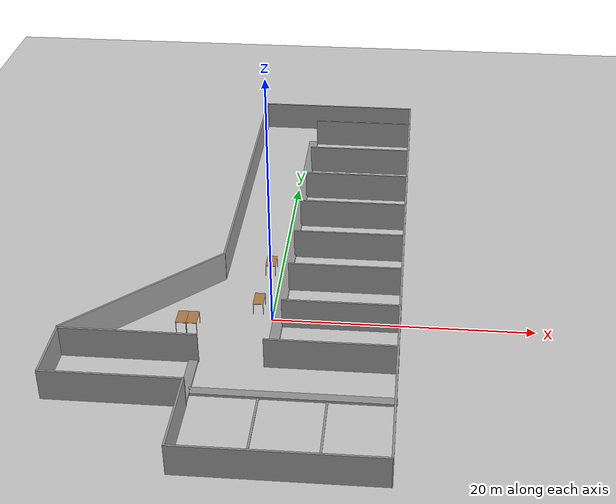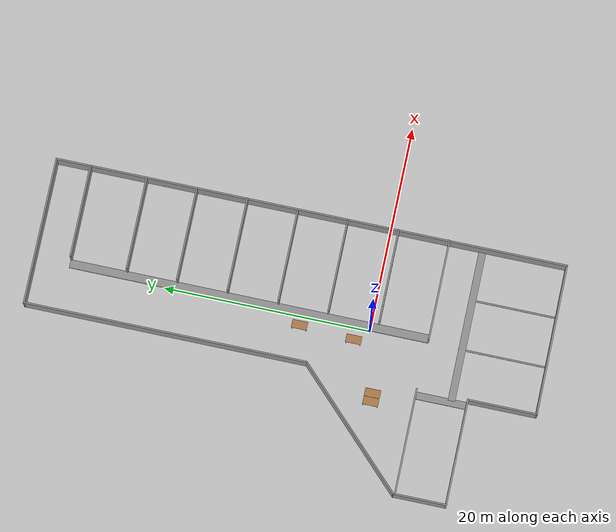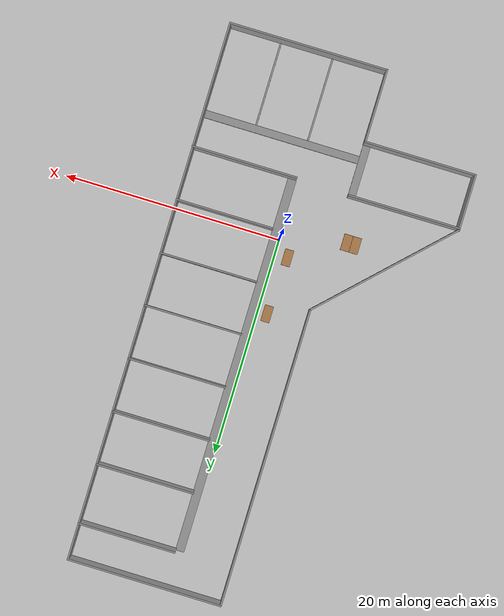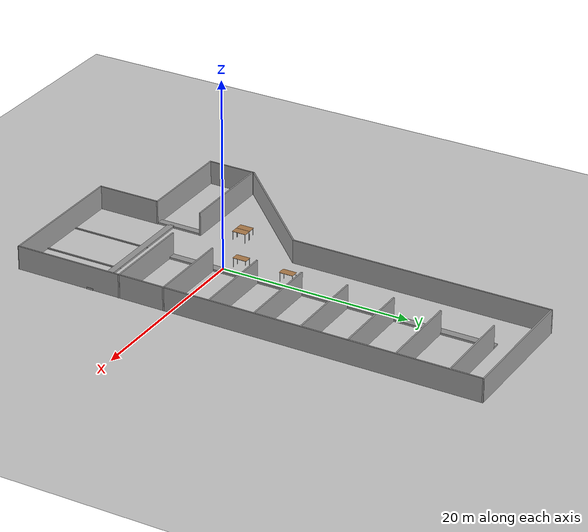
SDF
<sdf version="1.6">
 <world name="default">
  <model name="test__">
   <pose>-2.61572 7.75657 0 0 -0 0</pose>
   <link name="Wall_1">
    <collision name="Wall_1_Collision">
     <geometry><box><size>15 0.15 2.5</size></box></geometry>
     <pose>0 0 1.25 0 -0 0</pose>
    </collision>
    <visual name="Wall_1_Visual">
     <pose>0 0 1.25 0 -0 0</pose>
     <geometry><box><size>15 0.15 2.5</size></box></geometry>
     <material>
      <script><uri>file://media/materials/scripts/gazebo.material</uri><name>Gazebo/Grey</name></script>
      <ambient>1 1 1 1</ambient>
     </material>
     <meta><layer>0</layer></meta>
    </visual>
    <pose>-7.10691 -7.85176 0 0 -0 -2.35619</pose>
   </link>
   <link name="Wall_11">
    <collision name="Wall_11_Collision">
     <geometry><box><size>14.3012 0.15 2.5</size></box></geometry>
     <pose>0 0 1.25 0 -0 0</pose>
    </collision>
    <visual name="Wall_11_Visual">
     <pose>0 0 1.25 0 -0 0</pose>
     <geometry><box><size>14.3012 0.15 2.5</size></box></geometry>
     <material>
      <script><uri>file://media/materials/scripts/gazebo.material</uri><name>Gazebo/Grey</name></script>
      <ambient>1 1 1 1</ambient>
     </material>
     <meta><layer>0</layer></meta>
    </visual>
    <pose>5.26724 24.8122 0 0 -0 3.13958</pose>
   </link>
   <link name="Wall_12">
    <collision name="Wall_12_Collision">
     <geometry><box><size>27.5 0.15 2.5</size></box></geometry>
     <pose>0 0 1.25 0 -0 0</pose>
    </collision>
    <visual name="Wall_12_Visual">
     <pose>0 0 1.25 0 -0 0</pose>
     <geometry><box><size>27.5 0.15 2.5</size></box></geometry>
     <material>
      <script><uri>file://media/materials/scripts/gazebo.material</uri><name>Gazebo/Grey</name></script>
      <ambient>1 1 1 1</ambient>
     </material>
     <meta><layer>0</layer></meta>
    </visual>
    <pose>-1.80834 11.1571 0 0 -0 -1.5708</pose>
   </link>
   <link name="Wall_21">
    <collision name="Wall_21_Collision">
     <geometry><box><size>10.2504 0.15 2.5</size></box></geometry>
     <pose>0 0 1.25 0 -0 0</pose>
    </collision>
    <visual name="Wall_21_Visual">
     <pose>0 0 1.25 0 -0 0</pose>
     <geometry><box><size>10.2504 0.15 2.5</size></box></geometry>
     <material>
      <script><uri>file://media/materials/scripts/gazebo.material</uri><name>Gazebo/Grey</name></script>
      <ambient>1 1 1 1</ambient>
     </material>
     <meta><layer>0</layer></meta>
    </visual>
    <pose>-7.21776 -13.2674 0 0 -0 -3.14011</pose>
   </link>
   <link name="Wall_25">
    <collision name="Wall_25_Collision">
     <geometry><box><size>8.5 0.15 0.1</size></box></geometry>
     <pose>0 0 0.05 0 -0 0</pose>
    </collision>
    <visual name="Wall_25_Visual">
     <pose>0 0 0.05 0 -0 0</pose>
     <geometry><box><size>8.5 0.15 0.1</size></box></geometry>
     <material>
      <script><uri>file://media/materials/scripts/gazebo.material</uri><name>Gazebo/Grey</name></script>
      <ambient>1 1 1 1</ambient>
     </material>
     <meta><layer>0</layer></meta>
    </visual>
    <pose>2.73219 -20.5989 0 0 -0 -1.5708</pose>
   </link>
   <link name="Wall_27">
    <collision name="Wall_27_Collision">
     <geometry><box><size>8.5 0.15 0.1</size></box></geometry>
     <pose>0 0 0.05 0 -0 0</pose>
    </collision>
    <visual name="Wall_27_Visual">
     <pose>0 0 0.05 0 -0 0</pose>
     <geometry><box><size>8.5 0.15 0.1</size></box></geometry>
     <material>
      <script><uri>file://media/materials/scripts/gazebo.material</uri><name>Gazebo/Grey</name></script>
      <ambient>1 1 1 1</ambient>
     </material>
     <meta><layer>0</layer></meta>
    </visual>
    <pose>7.59109 -20.6044 0 0 -0 -1.5708</pose>
   </link>
   <link name="Wall_29">
    <collision name="Wall_29_Collision">
     <geometry><box><size>9.75 0.15 2.5</size></box></geometry>
     <pose>0 0 1.25 0 -0 0</pose>
    </collision>
    <visual name="Wall_29_Visual">
     <pose>0 0 1.25 0 -0 0</pose>
     <geometry><box><size>9.75 0.15 2.5</size></box></geometry>
     <material>
      <script><uri>file://media/materials/scripts/gazebo.material</uri><name>Gazebo/Grey</name></script>
      <ambient>1 1 1 1</ambient>
     </material>
     <meta><layer>0</layer></meta>
    </visual>
    <pose>7.56587 -13.406 0 0 -0 3.14159</pose>
   </link>
   <link name="Wall_3">
    <collision name="Wall_3_Collision">
     <geometry><box><size>5.25 0.15 2.5</size></box></geometry>
     <pose>0 0 1.25 0 -0 0</pose>
    </collision>
    <visual name="Wall_3_Visual">
     <pose>0 0 1.25 0 -0 0</pose>
     <geometry><box><size>5.25 0.15 2.5</size></box></geometry>
     <material>
      <script><uri>file://media/materials/scripts/gazebo.material</uri><name>Gazebo/Grey</name></script>
      <ambient>1 1 1 1</ambient>
     </material>
     <meta><layer>0</layer></meta>
    </visual>
    <pose>-12.3572 -15.652 0 0 -0 -1.5708</pose>
   </link>
   <link name="Wall_31">
    <collision name="Wall_31_Collision">
     <geometry><box><size>34.9 0.8 0.2</size></box></geometry>
     <pose>0 0 0.1 0 -0 0</pose>
    </collision>
    <visual name="Wall_31_Visual">
     <pose>0 0 0.1 0 -0 0</pose>
     <geometry><box><size>34.9 0.8 0.2</size></box></geometry>
     <material>
      <script><uri>file://media/materials/scripts/gazebo.material</uri><name>Gazebo/Grey</name></script>
      <ambient>1 1 1 1</ambient>
     </material>
     <meta><layer>0</layer></meta>
    </visual>
    <pose>3.07724 4.10911 0 0 -0 1.5708</pose>
   </link>
   <link name="Wall_33">
    <collision name="Wall_33_Collision">
     <geometry><box><size>9 0.15 2.5</size></box></geometry>
     <pose>0 0 1.25 0 -0 0</pose>
    </collision>
    <visual name="Wall_33_Visual">
     <pose>0 0 1.25 0 -0 0</pose>
     <geometry><box><size>9 0.15 2.5</size></box></geometry>
     <material>
      <script><uri>file://media/materials/scripts/gazebo.material</uri><name>Gazebo/Grey</name></script>
      <ambient>1 1 1 1</ambient>
     </material>
     <meta><layer>0</layer></meta>
    </visual>
    <pose>7.93132 -8.48567 0 0 -0 0</pose>
   </link>
   <link name="Wall_35">
    <collision name="Wall_35_Collision">
     <geometry><box><size>9 0.15 2.5</size></box></geometry>
     <pose>0 0 1.25 0 -0 0</pose>
    </collision>
    <visual name="Wall_35_Visual">
     <pose>0 0 1.25 0 -0 0</pose>
     <geometry><box><size>9 0.15 2.5</size></box></geometry>
     <material>
      <script><uri>file://media/materials/scripts/gazebo.material</uri><name>Gazebo/Grey</name></script>
      <ambient>1 1 1 1</ambient>
     </material>
     <meta><layer>0</layer></meta>
    </visual>
    <pose>7.91645 -3.54945 0 0 -0 0</pose>
   </link>
   <link name="Wall_37">
    <collision name="Wall_37_Collision">
     <geometry><box><size>9 0.15 2.5</size></box></geometry>
     <pose>0 0 1.25 0 -0 0</pose>
    </collision>
    <visual name="Wall_37_Visual">
     <pose>0 0 1.25 0 -0 0</pose>
     <geometry><box><size>9 0.15 2.5</size></box></geometry>
     <material>
      <script><uri>file://media/materials/scripts/gazebo.material</uri><name>Gazebo/Grey</name></script>
      <ambient>1 1 1 1</ambient>
     </material>
     <meta><layer>0</layer></meta>
    </visual>
    <pose>7.85698 1.29757 0 0 -0 0</pose>
   </link>
   <link name="Wall_39">
    <collision name="Wall_39_Collision">
     <geometry><box><size>9 0.15 2.5</size></box></geometry>
     <pose>0 0 1.25 0 -0 0</pose>
    </collision>
    <visual name="Wall_39_Visual">
     <pose>0 0 1.25 0 -0 0</pose>
     <geometry><box><size>9 0.15 2.5</size></box></geometry>
     <material>
      <script><uri>file://media/materials/scripts/gazebo.material</uri><name>Gazebo/Grey</name></script>
      <ambient>1 1 1 1</ambient>
     </material>
     <meta><layer>0</layer></meta>
    </visual>
    <pose>7.88083 6.21966 0 0 -0 0</pose>
   </link>
   <link name="Wall_4">
    <collision name="Wall_4_Collision">
     <geometry><box><size>10.3399 0.15 2.5</size></box></geometry>
     <pose>0 0 1.25 0 -0 0</pose>
    </collision>
    <visual name="Wall_4_Visual">
     <pose>0 0 1.25 0 -0 0</pose>
     <geometry><box><size>10.3399 0.15 2.5</size></box></geometry>
     <material>
      <script><uri>file://media/materials/scripts/gazebo.material</uri><name>Gazebo/Grey</name></script>
      <ambient>1 1 1 1</ambient>
     </material>
     <meta><layer>0</layer></meta>
    </visual>
    <pose>-7.26247 -18.202 0 0 -0 1.4e-05</pose>
   </link>
   <link name="Wall_41">
    <collision name="Wall_41_Collision">
     <geometry><box><size>9 0.15 2.5</size></box></geometry>
     <pose>0 0 1.25 0 -0 0</pose>
    </collision>
    <visual name="Wall_41_Visual">
     <pose>0 0 1.25 0 -0 0</pose>
     <geometry><box><size>9 0.15 2.5</size></box></geometry>
     <material>
      <script><uri>file://media/materials/scripts/gazebo.material</uri><name>Gazebo/Grey</name></script>
      <ambient>1 1 1 1</ambient>
     </material>
     <meta><layer>0</layer></meta>
    </visual>
    <pose>7.88083 11.1256 0 0 -0 0</pose>
   </link>
   <link name="Wall_43">
    <collision name="Wall_43_Collision">
     <geometry><box><size>9 0.15 2.5</size></box></geometry>
     <pose>0 0 1.25 0 -0 0</pose>
    </collision>
    <visual name="Wall_43_Visual">
     <pose>0 0 1.25 0 -0 0</pose>
     <geometry><box><size>9 0.15 2.5</size></box></geometry>
     <material>
      <script><uri>file://media/materials/scripts/gazebo.material</uri><name>Gazebo/Grey</name></script>
      <ambient>1 1 1 1</ambient>
     </material>
     <meta><layer>0</layer></meta>
    </visual>
    <pose>7.88083 16.0119 0 0 -0 0</pose>
   </link>
   <link name="Wall_45">
    <collision name="Wall_45_Collision">
     <geometry><box><size>9 0.15 2.5</size></box></geometry>
     <pose>0 0 1.25 0 -0 0</pose>
    </collision>
    <visual name="Wall_45_Visual">
     <pose>0 0 1.25 0 -0 0</pose>
     <geometry><box><size>9 0.15 2.5</size></box></geometry>
     <material>
      <script><uri>file://media/materials/scripts/gazebo.material</uri><name>Gazebo/Grey</name></script>
      <ambient>1 1 1 1</ambient>
     </material>
     <meta><layer>0</layer></meta>
    </visual>
    <pose>7.91033 21.4782 0 0 -0 0</pose>
   </link>
   <link name="Wall_49">
    <collision name="Wall_49_Collision">
     <geometry><box><size>5 0.7 0.2</size></box></geometry>
     <pose>0 0 0.1 0 -0 0</pose>
    </collision>
    <visual name="Wall_49_Visual">
     <pose>0 0 0.1 0 -0 0</pose>
     <geometry><box><size>5 0.7 0.2</size></box></geometry>
     <material>
      <script><uri>file://media/materials/scripts/gazebo.material</uri><name>Gazebo/Grey</name></script>
      <ambient>1 1 1 1</ambient>
     </material>
     <meta><layer>0</layer></meta>
    </visual>
    <pose>-2.47472 -15.7158 0 0 -0 1.5708</pose>
   </link>
   <link name="Wall_51">
    <collision name="Wall_51_Collision">
     <geometry><box><size>14.75 0.7 0.2</size></box></geometry>
     <pose>0 0 0.1 0 -0 0</pose>
    </collision>
    <visual name="Wall_51_Visual">
     <pose>0 0 0.1 0 -0 0</pose>
     <geometry><box><size>14.75 0.7 0.2</size></box></geometry>
     <material>
      <script><uri>file://media/materials/scripts/gazebo.material</uri><name>Gazebo/Grey</name></script>
      <ambient>1 1 1 1</ambient>
     </material>
     <meta><layer>0</layer></meta>
    </visual>
    <pose>5.08824 -16.7089 0 0 -0 0</pose>
   </link>
   <link name="Wall_7">
    <collision name="Wall_7_Collision">
     <geometry><box><size>6.75 0.15 2.5</size></box></geometry>
     <pose>0 0 1.25 0 -0 0</pose>
    </collision>
    <visual name="Wall_7_Visual">
     <pose>0 0 1.25 0 -0 0</pose>
     <geometry><box><size>6.75 0.15 2.5</size></box></geometry>
     <material>
      <script><uri>file://media/materials/scripts/gazebo.material</uri><name>Gazebo/Grey</name></script>
      <ambient>1 1 1 1</ambient>
     </material>
     <meta><layer>0</layer></meta>
    </visual>
    <pose>-2.16761 -21.502 0 0 -0 -1.57075</pose>
   </link>
   <link name="Wall_8">
    <collision name="Wall_8_Collision">
     <geometry><box><size>14.6604 0.15 2.5</size></box></geometry>
     <pose>0 0 1.25 0 -0 0</pose>
    </collision>
    <visual name="Wall_8_Visual">
     <pose>0 0 1.25 0 -0 0</pose>
     <geometry><box><size>14.6604 0.15 2.5</size></box></geometry>
     <material>
      <script><uri>file://media/materials/scripts/gazebo.material</uri><name>Gazebo/Grey</name></script>
      <ambient>1 1 1 1</ambient>
     </material>
     <meta><layer>0</layer></meta>
    </visual>
    <pose>5.08768 -24.817 0 0 -0 0.002061</pose>
   </link>
   <link name="Wall_9">
    <collision name="Wall_9_Collision">
     <geometry><box><size>49.75 0.15 2.5</size></box></geometry>
     <pose>0 0 1.25 0 -0 0</pose>
    </collision>
    <visual name="Wall_9_Visual">
     <pose>0 0 1.25 0 -0 0</pose>
     <geometry><box><size>49.75 0.15 2.5</size></box></geometry>
     <material>
      <script><uri>file://media/materials/scripts/gazebo.material</uri><name>Gazebo/Grey</name></script>
      <ambient>1 1 1 1</ambient>
     </material>
     <meta><layer>0</layer></meta>
    </visual>
    <pose>12.3428 -0.002026 0 0 -0 1.5708</pose>
   </link>
   <static>1</static>
  </model>
  <model name="ground_plane">
   <static>1</static>
   <link name="link">
    <collision name="collision">
     <geometry><plane><normal>0 0 1</normal><size>100 100</size></plane></geometry>
     <surface>
      <contact><collide_bitmask>65535</collide_bitmask></contact>
      <friction><ode><mu>100</mu><mu2>50</mu2></ode></friction>
     </surface>
    </collision>
    <visual name="visual">
     <cast_shadows>0</cast_shadows>
     <geometry><plane><normal>0 0 1</normal><size>100 100</size></plane></geometry>
     <material>
      <script><uri>file://media/materials/scripts/gazebo.material</uri><name>Gazebo/Grey</name></script>
     </material>
    </visual>
   </link>
   <pose>-3.51447 11.9136 0 0 -0 0</pose>
  </model>
  <model name="table_clone">
   <static>1</static>
   <link name="link">
    <collision name="surface">
     <pose>0 0 1 0 -0 0</pose>
     <geometry><box><size>1.5 0.8 0.03</size></box></geometry>
     <surface><friction><ode><mu>0.6</mu><mu2>0.6</mu2></ode></friction></surface>
    </collision>
    <visual name="visual1">
     <pose>0 0 1 0 -0 0</pose>
     <geometry><box><size>1.5 0.8 0.03</size></box></geometry>
     <material>
      <script><uri>file://media/materials/scripts/gazebo.material</uri><name>Gazebo/Wood</name></script>
     </material>
    </visual>
    <collision name="front_left_leg">
     <pose>0.68 0.38 0.5 0 -0 0</pose>
     <geometry><cylinder><radius>0.02</radius><length>1</length></cylinder></geometry>
    </collision>
    <visual name="front_left_leg">
     <pose>0.68 0.38 0.5 0 -0 0</pose>
     <geometry><cylinder><radius>0.02</radius><length>1</length></cylinder></geometry>
     <material>
      <script><uri>file://media/materials/scripts/gazebo.material</uri><name>Gazebo/Grey</name></script>
     </material>
    </visual>
    <collision name="front_right_leg">
     <pose>0.68 -0.38 0.5 0 -0 0</pose>
     <geometry><cylinder><radius>0.02</radius><length>1</length></cylinder></geometry>
    </collision>
    <visual name="front_right_leg">
     <pose>0.68 -0.38 0.5 0 -0 0</pose>
     <geometry><cylinder><radius>0.02</radius><length>1</length></cylinder></geometry>
     <material>
      <script><uri>file://media/materials/scripts/gazebo.material</uri><name>Gazebo/Grey</name></script>
     </material>
    </visual>
    <collision name="back_right_leg">
     <pose>-0.68 -0.38 0.5 0 -0 0</pose>
     <geometry><cylinder><radius>0.02</radius><length>1</length></cylinder></geometry>
    </collision>
    <visual name="back_right_leg">
     <pose>-0.68 -0.38 0.5 0 -0 0</pose>
     <geometry><cylinder><radius>0.02</radius><length>1</length></cylinder></geometry>
     <material>
      <script><uri>file://media/materials/scripts/gazebo.material</uri><name>Gazebo/Grey</name></script>
     </material>
    </visual>
    <collision name="back_left_leg">
     <pose>-0.68 0.38 0.5 0 -0 0</pose>
     <geometry><cylinder><radius>0.02</radius><length>1</length></cylinder></geometry>
    </collision>
    <visual name="back_left_leg">
     <pose>-0.68 0.38 0.5 0 -0 0</pose>
     <geometry><cylinder><radius>0.02</radius><length>1</length></cylinder></geometry>
     <material>
      <script><uri>file://media/materials/scripts/gazebo.material</uri><name>Gazebo/Grey</name></script>
     </material>
    </visual>
   </link>
   <pose>-1.16496 1.3236 0 0 0 -1.56764</pose>
  </model>
  <model name="table_clone_clone_0">
   <static>1</static>
   <link name="link">
    <collision name="surface">
     <pose>0 0 1 0 -0 0</pose>
     <geometry><box><size>1.5 0.8 0.03</size></box></geometry>
     <surface><friction><ode><mu>0.6</mu><mu2>0.6</mu2></ode></friction></surface>
    </collision>
    <visual name="visual1">
     <pose>0 0 1 0 -0 0</pose>
     <geometry><box><size>1.5 0.8 0.03</size></box></geometry>
     <material>
      <script><uri>file://media/materials/scripts/gazebo.material</uri><name>Gazebo/Wood</name></script>
     </material>
    </visual>
    <collision name="front_left_leg">
     <pose>0.68 0.38 0.5 0 -0 0</pose>
     <geometry><cylinder><radius>0.02</radius><length>1</length></cylinder></geometry>
    </collision>
    <visual name="front_left_leg">
     <pose>0.68 0.38 0.5 0 -0 0</pose>
     <geometry><cylinder><radius>0.02</radius><length>1</length></cylinder></geometry>
     <material>
      <script><uri>file://media/materials/scripts/gazebo.material</uri><name>Gazebo/Grey</name></script>
     </material>
    </visual>
    <collision name="front_right_leg">
     <pose>0.68 -0.38 0.5 0 -0 0</pose>
     <geometry><cylinder><radius>0.02</radius><length>1</length></cylinder></geometry>
    </collision>
    <visual name="front_right_leg">
     <pose>0.68 -0.38 0.5 0 -0 0</pose>
     <geometry><cylinder><radius>0.02</radius><length>1</length></cylinder></geometry>
     <material>
      <script><uri>file://media/materials/scripts/gazebo.material</uri><name>Gazebo/Grey</name></script>
     </material>
    </visual>
    <collision name="back_right_leg">
     <pose>-0.68 -0.38 0.5 0 -0 0</pose>
     <geometry><cylinder><radius>0.02</radius><length>1</length></cylinder></geometry>
    </collision>
    <visual name="back_right_leg">
     <pose>-0.68 -0.38 0.5 0 -0 0</pose>
     <geometry><cylinder><radius>0.02</radius><length>1</length></cylinder></geometry>
     <material>
      <script><uri>file://media/materials/scripts/gazebo.material</uri><name>Gazebo/Grey</name></script>
     </material>
    </visual>
    <collision name="back_left_leg">
     <pose>-0.68 0.38 0.5 0 -0 0</pose>
     <geometry><cylinder><radius>0.02</radius><length>1</length></cylinder></geometry>
    </collision>
    <visual name="back_left_leg">
     <pose>-0.68 0.38 0.5 0 -0 0</pose>
     <geometry><cylinder><radius>0.02</radius><length>1</length></cylinder></geometry>
     <material>
      <script><uri>file://media/materials/scripts/gazebo.material</uri><name>Gazebo/Grey</name></script>
     </material>
    </visual>
   </link>
   <pose>-0.876309 6.63945 0 0 0 -1.56764</pose>
  </model>
  <model name="table_clone_clone_clone">
   <static>1</static>
   <link name="link">
    <collision name="surface">
     <pose>0 0 1 0 -0 0</pose>
     <geometry><box><size>1.5 0.8 0.03</size></box></geometry>
     <surface><friction><ode><mu>0.6</mu><mu2>0.6</mu2></ode></friction></surface>
    </collision>
    <visual name="visual1">
     <pose>0 0 1 0 -0 0</pose>
     <geometry><box><size>1.5 0.8 0.03</size></box></geometry>
     <material>
      <script><uri>file://media/materials/scripts/gazebo.material</uri><name>Gazebo/Wood</name></script>
     </material>
    </visual>
    <collision name="front_left_leg">
     <pose>0.68 0.38 0.5 0 -0 0</pose>
     <geometry><cylinder><radius>0.02</radius><length>1</length></cylinder></geometry>
    </collision>
    <visual name="front_left_leg">
     <pose>0.68 0.38 0.5 0 -0 0</pose>
     <geometry><cylinder><radius>0.02</radius><length>1</length></cylinder></geometry>
     <material>
      <script><uri>file://media/materials/scripts/gazebo.material</uri><name>Gazebo/Grey</name></script>
     </material>
    </visual>
    <collision name="front_right_leg">
     <pose>0.68 -0.38 0.5 0 -0 0</pose>
     <geometry><cylinder><radius>0.02</radius><length>1</length></cylinder></geometry>
    </collision>
    <visual name="front_right_leg">
     <pose>0.68 -0.38 0.5 0 -0 0</pose>
     <geometry><cylinder><radius>0.02</radius><length>1</length></cylinder></geometry>
     <material>
      <script><uri>file://media/materials/scripts/gazebo.material</uri><name>Gazebo/Grey</name></script>
     </material>
    </visual>
    <collision name="back_right_leg">
     <pose>-0.68 -0.38 0.5 0 -0 0</pose>
     <geometry><cylinder><radius>0.02</radius><length>1</length></cylinder></geometry>
    </collision>
    <visual name="back_right_leg">
     <pose>-0.68 -0.38 0.5 0 -0 0</pose>
     <geometry><cylinder><radius>0.02</radius><length>1</length></cylinder></geometry>
     <material>
      <script><uri>file://media/materials/scripts/gazebo.material</uri><name>Gazebo/Grey</name></script>
     </material>
    </visual>
    <collision name="back_left_leg">
     <pose>-0.68 0.38 0.5 0 -0 0</pose>
     <geometry><cylinder><radius>0.02</radius><length>1</length></cylinder></geometry>
    </collision>
    <visual name="back_left_leg">
     <pose>-0.68 0.38 0.5 0 -0 0</pose>
     <geometry><cylinder><radius>0.02</radius><length>1</length></cylinder></geometry>
     <material>
      <script><uri>file://media/materials/scripts/gazebo.material</uri><name>Gazebo/Grey</name></script>
     </material>
    </visual>
   </link>
   <pose>-5.84377 -1.48479 0 0 0 -1.56764</pose>
  </model>
  <model name="table_clone_clone_clone_0">
   <static>1</static>
   <link name="link">
    <collision name="surface">
     <pose>0 0 1 0 -0 0</pose>
     <geometry><box><size>1.5 0.8 0.03</size></box></geometry>
     <surface><friction><ode><mu>0.6</mu><mu2>0.6</mu2></ode></friction></surface>
    </collision>
    <visual name="visual1">
     <pose>0 0 1 0 -0 0</pose>
     <geometry><box><size>1.5 0.8 0.03</size></box></geometry>
     <material>
      <script><uri>file://media/materials/scripts/gazebo.material</uri><name>Gazebo/Wood</name></script>
     </material>
    </visual>
    <collision name="front_left_leg">
     <pose>0.68 0.38 0.5 0 -0 0</pose>
     <geometry><cylinder><radius>0.02</radius><length>1</length></cylinder></geometry>
    </collision>
    <visual name="front_left_leg">
     <pose>0.68 0.38 0.5 0 -0 0</pose>
     <geometry><cylinder><radius>0.02</radius><length>1</length></cylinder></geometry>
     <material>
      <script><uri>file://media/materials/scripts/gazebo.material</uri><name>Gazebo/Grey</name></script>
     </material>
    </visual>
    <collision name="front_right_leg">
     <pose>0.68 -0.38 0.5 0 -0 0</pose>
     <geometry><cylinder><radius>0.02</radius><length>1</length></cylinder></geometry>
    </collision>
    <visual name="front_right_leg">
     <pose>0.68 -0.38 0.5 0 -0 0</pose>
     <geometry><cylinder><radius>0.02</radius><length>1</length></cylinder></geometry>
     <material>
      <script><uri>file://media/materials/scripts/gazebo.material</uri><name>Gazebo/Grey</name></script>
     </material>
    </visual>
    <collision name="back_right_leg">
     <pose>-0.68 -0.38 0.5 0 -0 0</pose>
     <geometry><cylinder><radius>0.02</radius><length>1</length></cylinder></geometry>
    </collision>
    <visual name="back_right_leg">
     <pose>-0.68 -0.38 0.5 0 -0 0</pose>
     <geometry><cylinder><radius>0.02</radius><length>1</length></cylinder></geometry>
     <material>
      <script><uri>file://media/materials/scripts/gazebo.material</uri><name>Gazebo/Grey</name></script>
     </material>
    </visual>
    <collision name="back_left_leg">
     <pose>-0.68 0.38 0.5 0 -0 0</pose>
     <geometry><cylinder><radius>0.02</radius><length>1</length></cylinder></geometry>
    </collision>
    <visual name="back_left_leg">
     <pose>-0.68 0.38 0.5 0 -0 0</pose>
     <geometry><cylinder><radius>0.02</radius><length>1</length></cylinder></geometry>
     <material>
      <script><uri>file://media/materials/scripts/gazebo.material</uri><name>Gazebo/Grey</name></script>
     </material>
    </visual>
   </link>
   <pose>-6.64806 -1.48463 0 0 0 -1.56764</pose>
  </model>
 </world>
</sdf>
